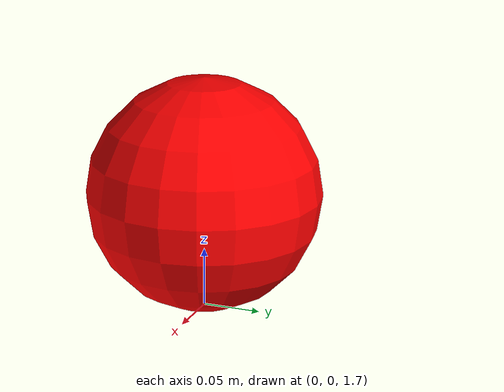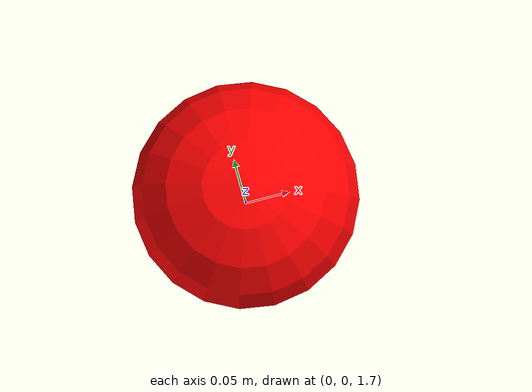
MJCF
<!--Modifikujeme soubor a divam se, co se stane-->
<mujoco>
	<option gravity = "0 0 -9.81"/>  <!--Odstraneni gravitace-->
	<worldbody>
        <light diffuse=".5 .5 .5" pos="0 0 3" dir="0 0 -1"/>

		<!--rgba = R, G, B, Průhlednost-->
		<geom type="plane" size="1 1 0.1" rgba="0.9 0.9 0.9 1"/>

		<body pos="0 0 1.8" >
			<joint type="free"/>
			<geom type="sphere" size="0.1" mass="1" rgba="1 0 0 1"/>
		</body>

	</worldbody>
</mujoco>
